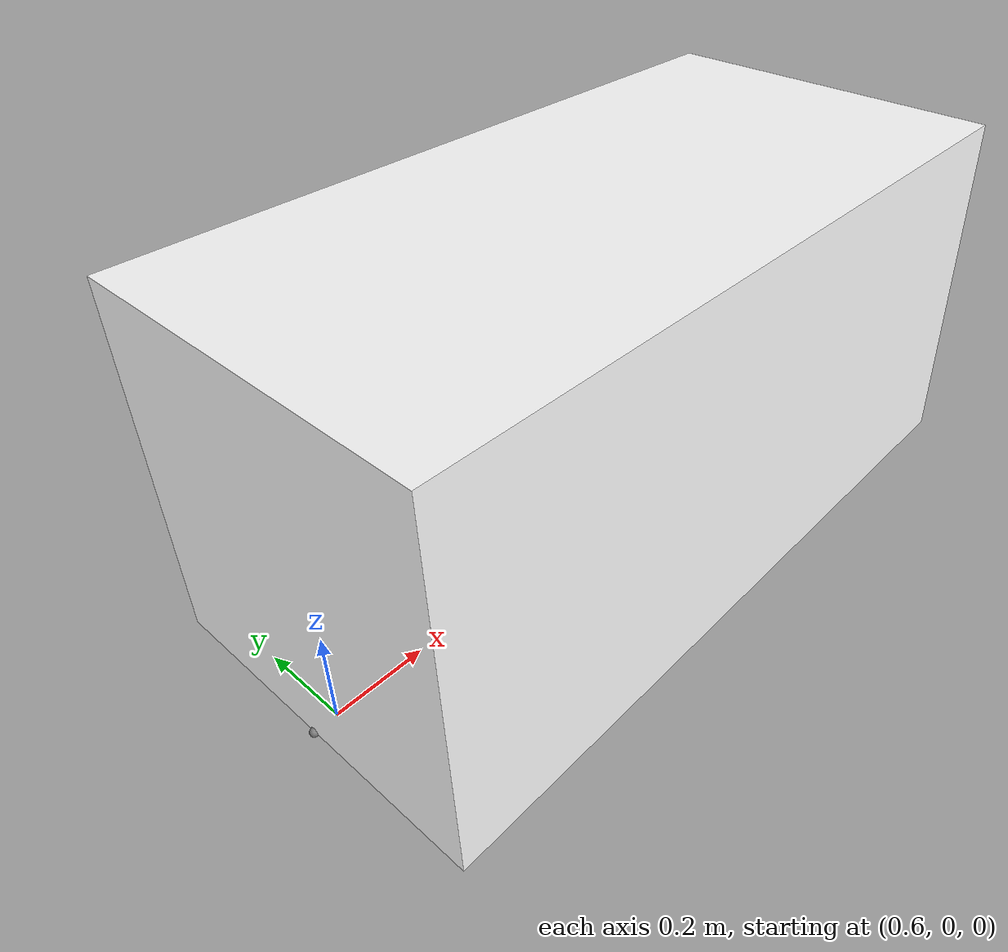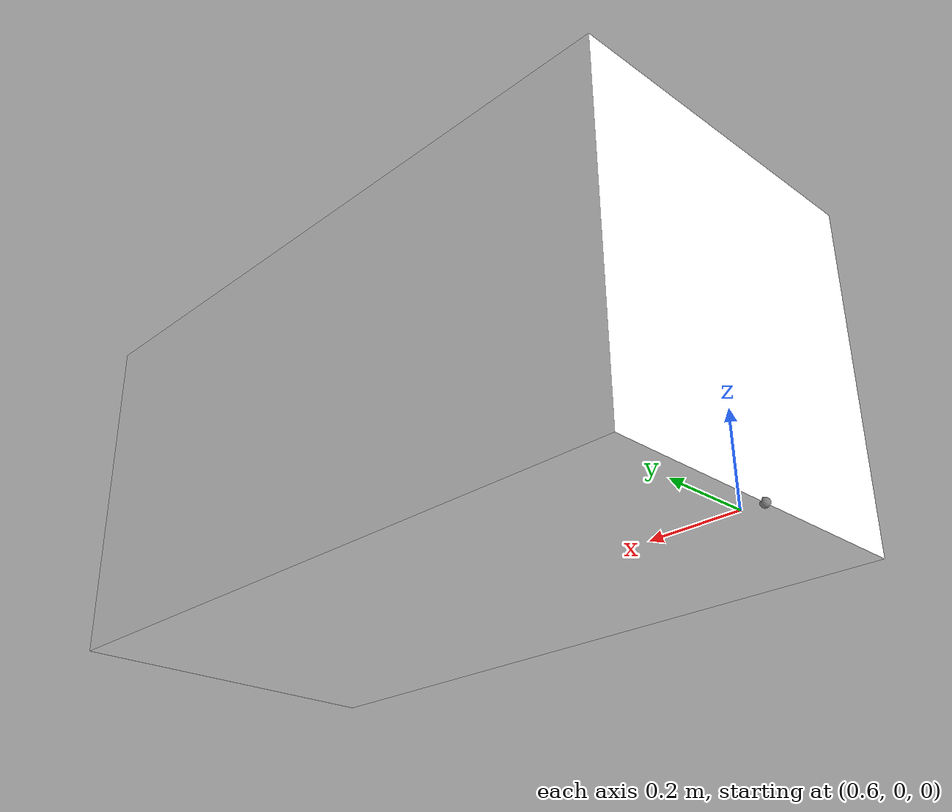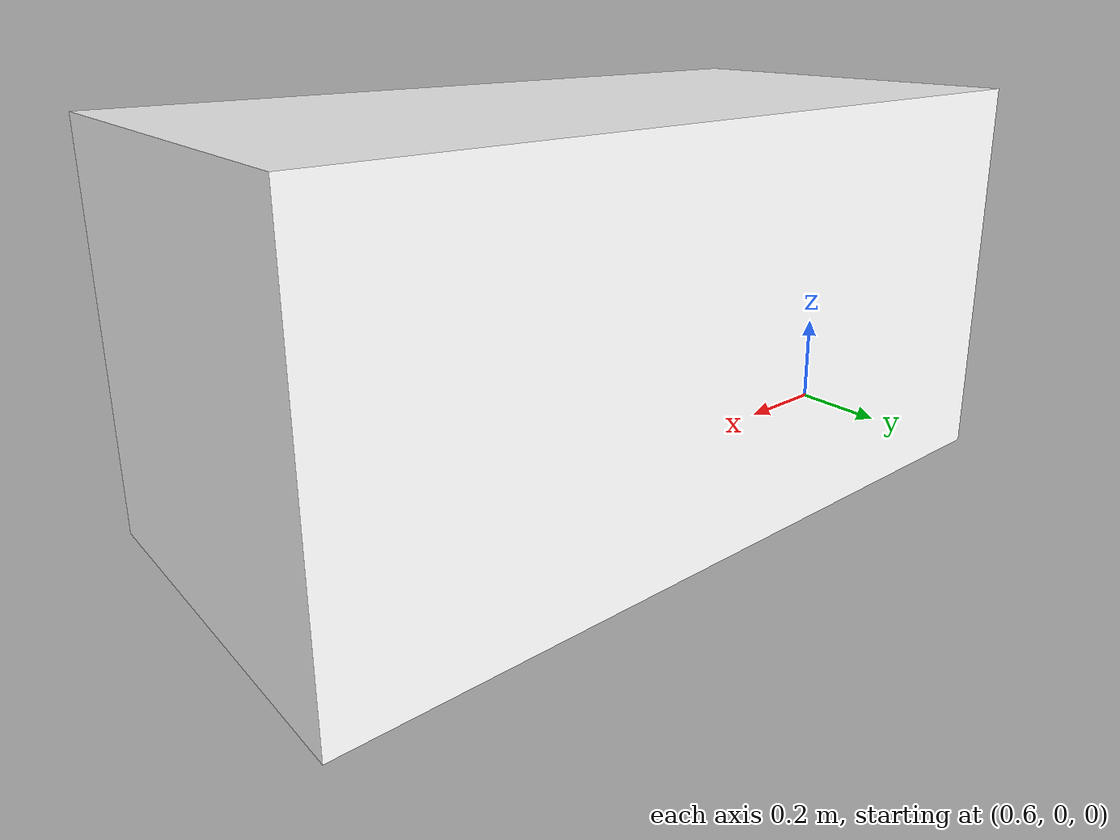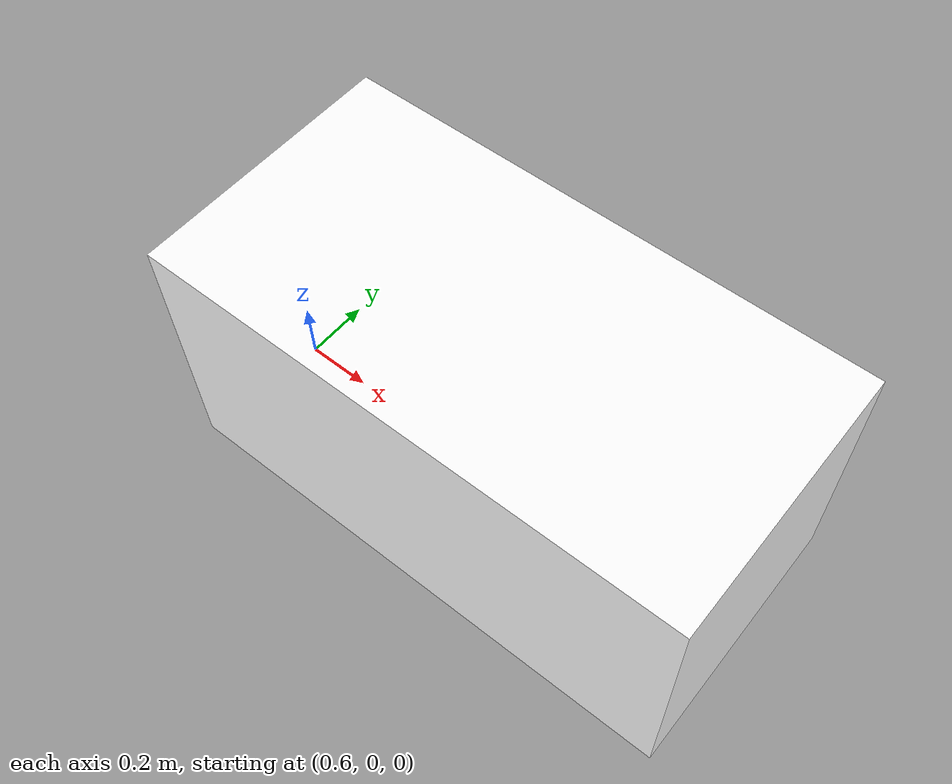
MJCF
<mujoco model="box">
    <compiler angle="radian" coordinate="local" />

    <asset>
        <material name="white" rgba="1 1 1 1" />
        <material name="red" rgba="1 0 0 1" />
    </asset>

    <worldbody>

        <body name="box" pos="0.55 0 0" quat="0 0 0 1">
            <freejoint name="box_root"/>
            <site name="box_frame" size="0.01" pos="0 0 0"/>
            <geom type="box" size="0.8 0.4 0.4" pos="-0.8 0 0.4" material="white" mass="8" priority="1" friction="0.5"/>

        </body>
    </worldbody>

    <sensor>
        <framepos name="box_pos" objtype="xbody" objname="box" />
        <framequat name="box_quat" objtype="xbody" objname="box" />
    </sensor>
</mujoco>
